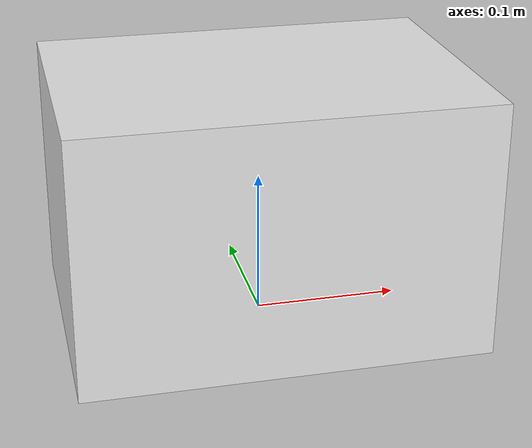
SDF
<?xml version="1.0"?>
<sdf version="1.7">
  <model name="box_to_push">
    <!-- Ghost body of negligible mass. -->
    <link name="ghost_body_x">
      <inertial>
        <mass>1.0e-6</mass>
        <inertia>
          <ixx>1.0e-6</ixx>
          <ixy>0</ixy>
          <ixz>0</ixz>
          <iyy>1.0e-6</iyy>
          <iyz>0</iyz>
          <izz>1.0e-6</izz>
        </inertia>
      </inertial>
    </link>

    <link name="ghost_body_y">
      <inertial>
        <mass>1.0e-6</mass>
        <inertia>
          <ixx>1.0e-6</ixx>
          <ixy>0</ixy>
          <ixz>0</ixz>
          <iyy>1.0e-6</iyy>
          <iyz>0</iyz>
          <izz>1.0e-6</izz>
        </inertia>
      </inertial>
    </link>

    <joint name="x_slider" type="prismatic">
      <parent>world</parent>
      <child>ghost_body_x</child>
      <axis>
        <xyz>1 0 0</xyz>
        <!-- Drake attaches an actuator to all joints with a non-zero effort
             limit. We do not want an actuator for this joint. -->
        <limit>
          <effort>0</effort>
        </limit>
      </axis>
    </joint>

    <joint name="y_slider" type="prismatic">
      <parent>ghost_body_x</parent>
      <child>ghost_body_y</child>
      <axis>
        <xyz>0 1 0</xyz>
        <!-- Drake attaches an actuator to all joints with a non-zero effort
             limit. We do not want an actuator for this joint and therefore we
             set a zero effort limit. -->
        <limit>
          <effort>0</effort>
        </limit>
      </axis>
    </joint>

    <joint name="rotation" type="revolute">
      <parent>ghost_body_y</parent>
      <child>box</child>
      <axis>
        <xyz>0 0 1</xyz>
        <!-- Drake attaches an actuator to all joints with a non-zero effort
             limit. We do not want an actuator for this joint and therefore we
             set a zero effort limit. -->
        <limit>
          <effort>0</effort>
        </limit>
      </axis>
    </joint>

    <link name="box">
      <pose>0 0 0.088 0 0 0 </pose>

      <inertial>
        <mass>1.45</mass>
        <inertia>
          <ixx>0.00848008333333333</ixx>
          <ixy>0</ixy>
          <ixz>0</ixz>
          <iyy>0.012947533333333332</iyy>
          <iyz>0</iyz>
          <izz>0.01394175</izz>
        </inertia>
      </inertial>

      <visual name="box_visual">
        <geometry>
          <box>
            <size>0.276 0.198 0.176</size>
          </box>
        </geometry>
        <material>
          <diffuse>0.9 0.9 0.9 0.9</diffuse>
        </material>
      </visual>

      <collision name="collision">
        <geometry>
          <box>
            <size>0.276 0.198 0.176</size>
          </box>
        </geometry>
        <surface>
          <friction>
            <ode>
              <mu>0.5</mu>
              <mu2>0.5</mu2>
            </ode>
          </friction>
        </surface>
      </collision>

    </link>
  </model>
</sdf>
